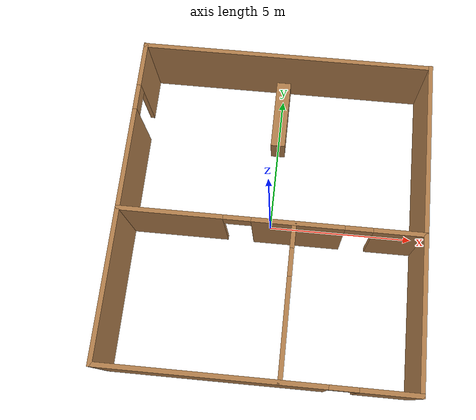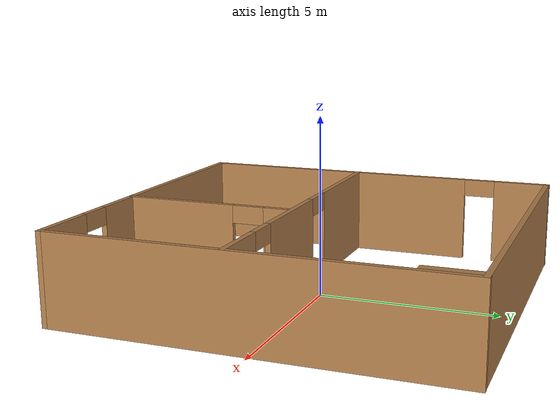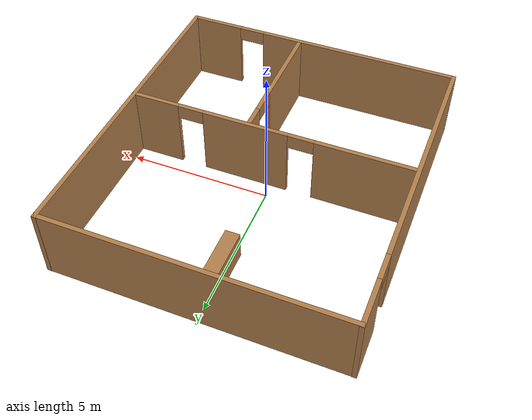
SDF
<sdf version="1.6">
 <world name="default">
  <physics type="ode">
   <max_step_size>0.001</max_step_size>
   <real_time_update_rate>1000</real_time_update_rate>
  </physics>
  <include><uri>model://sun</uri></include>
  <include><name>robocup_2019</name><uri>model://robocup_2019</uri><pose>0 0 0.1 0 0 0</pose></include>
 </world>
</sdf>

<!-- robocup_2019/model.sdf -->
<sdf version='1.6'>
  <model name='robocup_2019'>

    <link name='box_link'>
      <pose>0.0 4 0.5 0 0 0</pose>
      <collision name='collision'>
        <max_contacts>10</max_contacts>
        <geometry>
          <box>
            <size>0.5 2.5 1</size>
          </box>
        </geometry>
      </collision>
      <visual name='visual'>
        <geometry>
          <box>
            <size>0.5 2.5 1</size>
          </box>
        </geometry>
        <material>
          <script>
            <name>Gazebo/Wood</name>
            <uri>file://media/materials/scripts/gazebo.material</uri>
          </script>
        </material>
      </visual>
    </link>

    <link name='Wall_11'>
      <pose>0.087 -0.5 0 0 0 3.14159</pose>
      <visual name='Wall_11_Visual_0'>
        <pose>-4.1285 0 1.25 0 -0 0</pose>
        <geometry>
          <box>
            <size>1.743 0.15 2.5</size>
          </box>
        </geometry>
        <material>
          <script>
            <uri>file://media/materials/scripts/gazebo.material</uri>
            <name>Gazebo/Wood</name>
          </script>
          <ambient>1 1 1 1</ambient>
        </material>
        <meta>
          <layer>0</layer>
        </meta>
      </visual>
      <collision name='Wall_11_Collision_0'>
        <geometry>
          <box>
            <size>1.743 0.15 2.5</size>
          </box>
        </geometry>
        <pose>-4.1285 0 1.25 0 -0 0</pose>
      </collision>
      <visual name='Wall_11_Visual_1'>
        <pose>-0.862163 0 1.25 0 -0 0</pose>
        <geometry>
          <box>
            <size>2.98967 0.15 2.5</size>
          </box>
        </geometry>
        <material>
          <script>
            <uri>file://media/materials/scripts/gazebo.material</uri>
            <name>Gazebo/Wood</name>
          </script>
          <ambient>1 1 1 1</ambient>
        </material>
        <meta>
          <layer>0</layer>
        </meta>
      </visual>
      <collision name='Wall_11_Collision_1'>
        <geometry>
          <box>
            <size>2.98967 0.15 2.5</size>
          </box>
        </geometry>
        <pose>-0.862163 0 1.25 0 -0 0</pose>
      </collision>
      <visual name='Wall_11_Visual_2'>
        <pose>3.26634 0 1.25 0 -0 0</pose>
        <geometry>
          <box>
            <size>3.46733 0.15 2.5</size>
          </box>
        </geometry>
        <material>
          <script>
            <uri>file://media/materials/scripts/gazebo.material</uri>
            <name>Gazebo/Wood</name>
          </script>
          <ambient>1 1 1 1</ambient>
        </material>
        <meta>
          <layer>0</layer>
        </meta>
      </visual>
      <collision name='Wall_11_Collision_2'>
        <geometry>
          <box>
            <size>3.46733 0.15 2.5</size>
          </box>
        </geometry>
        <pose>3.26634 0 1.25 0 -0 0</pose>
      </collision>
      <visual name='Wall_11_Visual_3'>
        <pose>-2.807 0 2.25 0 -0 0</pose>
        <geometry>
          <box>
            <size>0.9 0.15 0.5</size>
          </box>
        </geometry>
        <material>
          <script>
            <uri>file://media/materials/scripts/gazebo.material</uri>
            <name>Gazebo/Wood</name>
          </script>
          <ambient>1 1 1 1</ambient>
        </material>
        <meta>
          <layer>0</layer>
        </meta>
      </visual>
      <collision name='Wall_11_Collision_3'>
        <geometry>
          <box>
            <size>0.9 0.15 0.5</size>
          </box>
        </geometry>
        <pose>-2.807 0 2.25 0 -0 0</pose>
      </collision>
      <visual name='Wall_11_Visual_4'>
        <pose>1.08267 0 2.25 0 -0 0</pose>
        <geometry>
          <box>
            <size>0.9 0.15 0.5</size>
          </box>
        </geometry>
        <material>
          <script>
            <uri>file://media/materials/scripts/gazebo.material</uri>
            <name>Gazebo/Wood</name>
          </script>
          <ambient>1 1 1 1</ambient>
        </material>
        <meta>
          <layer>0</layer>
        </meta>
      </visual>
      <collision name='Wall_11_Collision_4'>
        <geometry>
          <box>
            <size>0.9 0.15 0.5</size>
          </box>
        </geometry>
        <pose>1.08267 0 2.25 0 -0 0</pose>
      </collision>
    </link>
    <link name='Wall_13'>
      <pose>0.830455 -2.95 0 0 -0 1.5708</pose>
      <visual name='Wall_13_Visual_0'>
        <pose>-0.879017 0 1.25 0 -0 0</pose>
        <geometry>
          <box>
            <size>3.24197 0.15 2.5</size>
          </box>
        </geometry>
        <material>
          <script>
            <uri>file://media/materials/scripts/gazebo.material</uri>
            <name>Gazebo/Wood</name>
          </script>
          <ambient>1 1 1 1</ambient>
        </material>
        <meta>
          <layer>0</layer>
        </meta>
      </visual>
      <collision name='Wall_13_Collision_0'>
        <geometry>
          <box>
            <size>3.24197 0.15 2.5</size>
          </box>
        </geometry>
        <pose>-0.879017 0 1.25 0 -0 0</pose>
      </collision>
      <visual name='Wall_13_Visual_1'>
        <pose>2.07098 0 1.25 0 -0 0</pose>
        <geometry>
          <box>
            <size>0.858033 0.15 2.5</size>
          </box>
        </geometry>
        <material>
          <script>
            <uri>file://media/materials/scripts/gazebo.material</uri>
            <name>Gazebo/Wood</name>
          </script>
          <ambient>1 1 1 1</ambient>
        </material>
        <meta>
          <layer>0</layer>
        </meta>
      </visual>
      <collision name='Wall_13_Collision_1'>
        <geometry>
          <box>
            <size>0.858033 0.15 2.5</size>
          </box>
        </geometry>
        <pose>2.07098 0 1.25 0 -0 0</pose>
      </collision>
      <visual name='Wall_13_Visual_2'>
        <pose>1.19197 0 2.25 0 -0 0</pose>
        <geometry>
          <box>
            <size>0.9 0.15 0.5</size>
          </box>
        </geometry>
        <material>
          <script>
            <uri>file://media/materials/scripts/gazebo.material</uri>
            <name>Gazebo/Wood</name>
          </script>
          <ambient>1 1 1 1</ambient>
        </material>
        <meta>
          <layer>0</layer>
        </meta>
      </visual>
      <collision name='Wall_13_Collision_2'>
        <geometry>
          <box>
            <size>0.9 0.15 0.5</size>
          </box>
        </geometry>
        <pose>1.19197 0 2.25 0 -0 0</pose>
      </collision>
    </link>
    <link name='Wall_6'>
      <collision name='Wall_6_Collision'>
        <geometry>
          <box>
            <size>10 0.15 2.5</size>
          </box>
        </geometry>
        <pose>0 0 1.25 0 -0 0</pose>
      </collision>
      <visual name='Wall_6_Visual'>
        <pose>0 0 1.25 0 -0 0</pose>
        <geometry>
          <box>
            <size>10 0.15 2.5</size>
          </box>
        </geometry>
        <material>
          <script>
            <uri>file://media/materials/scripts/gazebo.material</uri>
            <name>Gazebo/Wood</name>
          </script>
          <ambient>1 1 1 1</ambient>
        </material>
        <meta>
          <layer>0</layer>
        </meta>
      </visual>
      <pose>0.089544 5.44849 0 0 -0 0</pose>
    </link>
    <link name='Wall_7'>
      <collision name='Wall_7_Collision'>
        <geometry>
          <box>
            <size>11 0.15 2.5</size>
          </box>
        </geometry>
        <pose>0 0 1.25 0 -0 0</pose>
      </collision>
      <visual name='Wall_7_Visual'>
        <pose>0 0 1.25 0 -0 0</pose>
        <geometry>
          <box>
            <size>11 0.15 2.5</size>
          </box>
        </geometry>
        <material>
          <script>
            <uri>file://media/materials/scripts/gazebo.material</uri>
            <name>Gazebo/Wood</name>
          </script>
          <ambient>1 1 1 1</ambient>
        </material>
        <meta>
          <layer>0</layer>
        </meta>
      </visual>
      <pose>5.01454 0.031048 0 0 -0 -1.5708</pose>
    </link>
    <link name='Wall_8'>
      <pose>0.089544 -5.39395 0 0 -0 3.14159</pose>
      <visual name='Wall_8_Visual_0'>
        <pose>-4.03896 0 1.25 0 -0 0</pose>
        <geometry>
          <box>
            <size>1.92209 0.15 2.5</size>
          </box>
        </geometry>
        <material>
          <script>
            <uri>file://media/materials/scripts/gazebo.material</uri>
            <name>Gazebo/Wood</name>
          </script>
          <ambient>1 1 1 1</ambient>
        </material>
        <meta>
          <layer>0</layer>
        </meta>
      </visual>
      <collision name='Wall_8_Collision_0'>
        <geometry>
          <box>
            <size>1.92209 0.15 2.5</size>
          </box>
        </geometry>
        <pose>-4.03896 0 1.25 0 -0 0</pose>
      </collision>
      <visual name='Wall_8_Visual_1'>
        <pose>1.41104 0 1.25 0 -0 0</pose>
        <geometry>
          <box>
            <size>7.17791 0.15 2.5</size>
          </box>
        </geometry>
        <material>
          <script>
            <uri>file://media/materials/scripts/gazebo.material</uri>
            <name>Gazebo/Wood</name>
          </script>
          <ambient>1 1 1 1</ambient>
        </material>
        <meta>
          <layer>0</layer>
        </meta>
      </visual>
      <collision name='Wall_8_Collision_1'>
        <geometry>
          <box>
            <size>7.17791 0.15 2.5</size>
          </box>
        </geometry>
        <pose>1.41104 0 1.25 0 -0 0</pose>
      </collision>
      <visual name='Wall_8_Visual_2'>
        <pose>-2.62791 0 2.25 0 -0 0</pose>
        <geometry>
          <box>
            <size>0.9 0.15 0.5</size>
          </box>
        </geometry>
        <material>
          <script>
            <uri>file://media/materials/scripts/gazebo.material</uri>
            <name>Gazebo/Wood</name>
          </script>
          <ambient>1 1 1 1</ambient>
        </material>
        <meta>
          <layer>0</layer>
        </meta>
      </visual>
      <collision name='Wall_8_Collision_2'>
        <geometry>
          <box>
            <size>0.9 0.15 0.5</size>
          </box>
        </geometry>
        <pose>-2.62791 0 2.25 0 -0 0</pose>
      </collision>
    </link>
    <link name='Wall_9'>
      <pose>-4.83883 0.031047 0 0 -0 1.57142</pose>
      <visual name='Wall_9_Visual_0'>
        <pose>-1.26936 0 1.25 0 -0 0</pose>
        <geometry>
          <box>
            <size>8.46129 0.15 2.5</size>
          </box>
        </geometry>
        <material>
          <script>
            <uri>file://media/materials/scripts/gazebo.material</uri>
            <name>Gazebo/Wood</name>
          </script>
          <ambient>1 1 1 1</ambient>
        </material>
        <meta>
          <layer>0</layer>
        </meta>
      </visual>
      <collision name='Wall_9_Collision_0'>
        <geometry>
          <box>
            <size>8.46129 0.15 2.5</size>
          </box>
        </geometry>
        <pose>-1.26936 0 1.25 0 -0 0</pose>
      </collision>
      <visual name='Wall_9_Visual_1'>
        <pose>4.68065 0 1.25 0 -0 0</pose>
        <geometry>
          <box>
            <size>1.63871 0.15 2.5</size>
          </box>
        </geometry>
        <material>
          <script>
            <uri>file://media/materials/scripts/gazebo.material</uri>
            <name>Gazebo/Wood</name>
          </script>
          <ambient>1 1 1 1</ambient>
        </material>
        <meta>
          <layer>0</layer>
        </meta>
      </visual>
      <collision name='Wall_9_Collision_1'>
        <geometry>
          <box>
            <size>1.63871 0.15 2.5</size>
          </box>
        </geometry>
        <pose>4.68065 0 1.25 0 -0 0</pose>
      </collision>
      <visual name='Wall_9_Visual_2'>
        <pose>3.41129 0 2.25 0 -0 0</pose>
        <geometry>
          <box>
            <size>0.9 0.15 0.5</size>
          </box>
        </geometry>
        <material>
          <script>
            <uri>file://media/materials/scripts/gazebo.material</uri>
            <name>Gazebo/Wood</name>
          </script>
          <ambient>1 1 1 1</ambient>
        </material>
        <meta>
          <layer>0</layer>
        </meta>
      </visual>
      <collision name='Wall_9_Collision_2'>
        <geometry>
          <box>
            <size>0.9 0.15 0.5</size>
          </box>
        </geometry>
        <pose>3.41129 0 2.25 0 -0 0</pose>
      </collision>
    </link>
    <static>1</static>
  </model>
</sdf>
